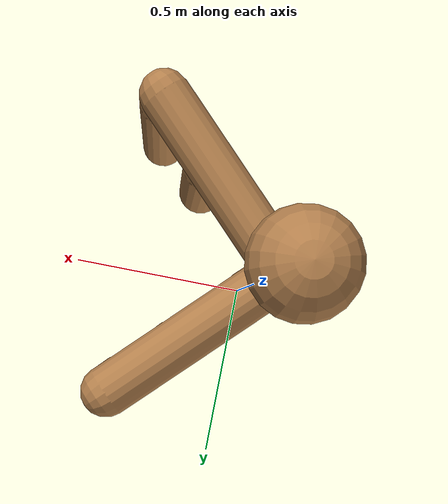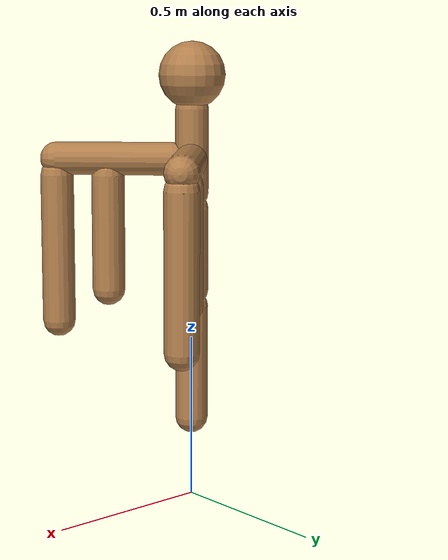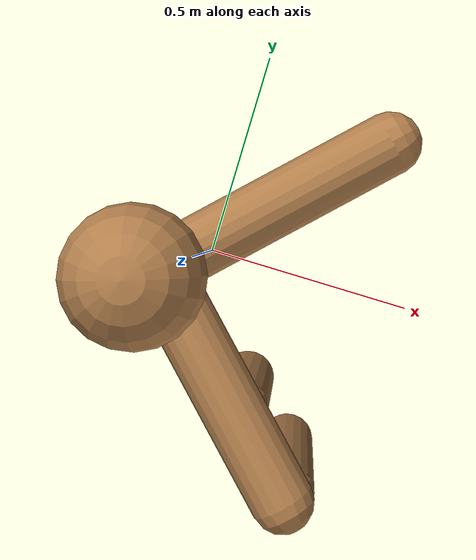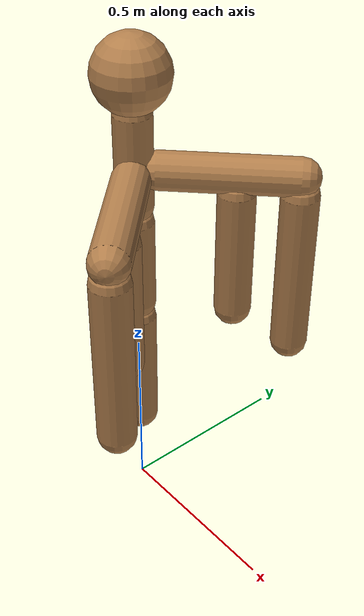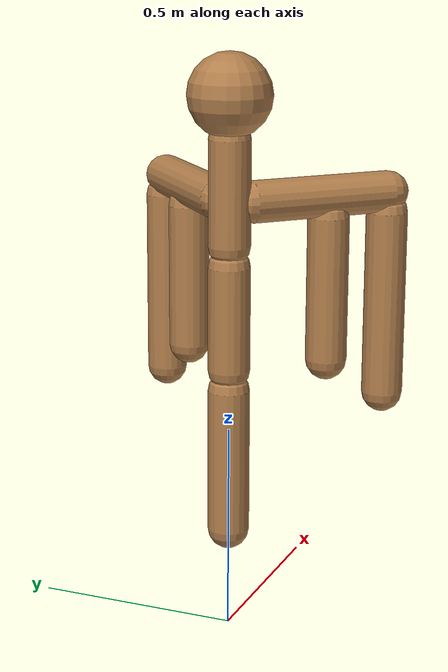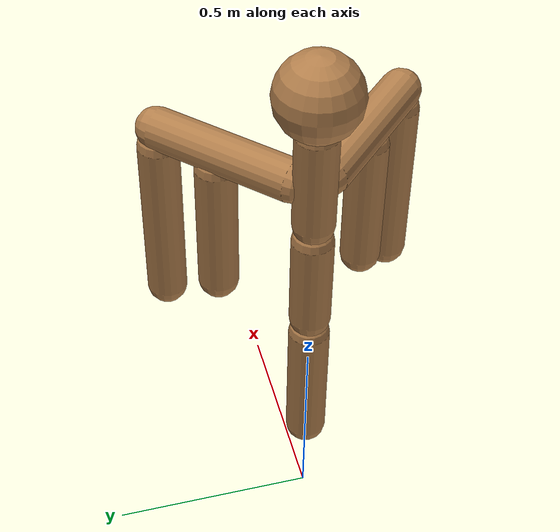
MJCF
<?xml version='1.0' encoding='UTF-8'?>
<!-- Universal Animal Template: unimal -->
<mujoco model="unimal">
  <compiler angle="degree"/>
  <size njmax="2000" nconmax="500"/>
  <option timestep=".005">
    <flag filterparent="disable"/>
  </option>
  <!-- Common defaults to make search space tractable -->
  <default>
    <!-- Define motor defaults -->
    <motor ctrlrange="-1 1" ctrllimited="true"/>
    <!-- Define joint defaults -->
    <default class="normal_joint">
      <joint type="hinge" damping="1" stiffness="1" armature="1" limited="true" range="-120 120" solimplimit="0 0.99 0.01"/>
    </default>
    <default class="walker_joint">
      <joint type="hinge" damping="0.2" stiffness="1" armature=".01" limited="true" range="-120 120" solimplimit="0 0.99 0.01"/>
    </default>
    <default class="stiff_joint">
      <joint type="hinge" damping="5" stiffness="10" armature=".01" limited="true" solimplimit="0 0.99 0.01"/>
    </default>
    <default class="free">
      <joint limited="false" damping="0" armature="0" stiffness="0"/>
    </default>
    <default class="growth_site">
      <site size="1e-6 1e-6 1e-6"/>
    </default>
    <default class="torso_growth_site">
      <site size="1e-6 1e-6 1e-6"/>
    </default>
    <default class="mirror_growth_site">
      <site size="1e-6 1e-6 1e-6"/>
    </default>
    <default class="btm_pos_site">
      <site size="1e-6 1e-6 1e-6"/>
    </default>
    <default class="box_face_site">
      <site size="1e-6 1e-6 1e-6"/>
    </default>
    <default class="imu_vel">
      <site type="box" size="0.05" rgba="1 0 0 0"/>
    </default>
    <default class="touch_site">
      <site group="3" rgba="0 0 1 .3"/>
    </default>
    <default class="food_site">
      <site material="food" size="0.15"/>
    </default>
    <!-- Define geom defaults -->
    <geom type="capsule" condim="3" friction="0.7 0.1 0.1" material="self"/>
  </default>
  <worldbody>
    <light diffuse="1 1 1" directional="true" exponent="1" pos="0 0 8" specular="0.1 0.1 0.1" dir="0 0 -1"/>
    <!-- Programatically generated xml goes here -->
    <body name="torso/0" pos="0 0 1.3">
      <joint name="root" type="free" class="free"/>
      <site name="root" class="imu_vel"/>
      <geom name="torso/0" type="sphere" size="0.1" condim="3" density="800"/>
      <camera name="side" pos="0 -7 2" xyaxes="1 0 0 0 1 2" mode="trackcom"/>
      <site name="torso/0" class="growth_site" pos="0 0 0"/>
      <site name="torso/btm_pos/0" class="btm_pos_site" pos="0 0 -0.1"/>
      <site name="torso/touch/0" class="touch_site" size="0.11"/>
      <site name="torso/vertical/0" class="torso_growth_site" pos="0 0 -0.1"/>
      <body name="limb/0" pos="0.0 0.0 -0.1">
        <joint name="limbx/0" type="hinge" class="normal_joint" range="-60 0" pos="0.0 0.0 0.05" axis="1.0 0.0 0.0"/>
        <joint name="limby/0" type="hinge" class="normal_joint" range="-60 30" pos="0.0 0.0 0.05" axis="0.0 1.0 0.0"/>
        <geom name="limb/0" type="capsule" fromto="0.0 0.0 0.0 0.0 0.0 -0.25" size="0.05" density="500"/>
        <site name="limb/mid/0" class="growth_site" pos="0.0 0.0 -0.15"/>
        <site name="limb/btm/0" class="growth_site" pos="0.0 0.0 -0.25"/>
        <site name="limb/btm_pos/0" class="btm_pos_site" pos="0.0 0.0 -0.25"/>
        <site name="limb/touch/0" class="touch_site" size="0.060000000000000005" fromto="0.0 0.0 0.0 0.0 0.0 -0.25" type="capsule"/>
        <body name="limb/21" pos="0.0 0.0 -0.3">
          <joint name="limbx/21" type="hinge" class="normal_joint" range="-90 0" pos="0.0 0.0 0.05" axis="1.0 0.0 0.0"/>
          <joint name="limby/21" type="hinge" class="normal_joint" range="-90 0" pos="0.0 0.0 0.05" axis="0.0 1.0 0.0"/>
          <geom name="limb/21" type="capsule" fromto="0.0 0.0 0.0 0.0 0.0 -0.25" size="0.05" density="500"/>
          <site name="limb/mid/21" class="growth_site" pos="0.0 0.0 -0.15"/>
          <site name="limb/btm/21" class="growth_site" pos="0.0 0.0 -0.25"/>
          <site name="limb/btm_pos/21" class="btm_pos_site" pos="0.0 0.0 -0.3"/>
          <site name="limb/touch/21" class="touch_site" size="0.060000000000000005" fromto="0.0 0.0 0.0 0.0 0.0 -0.25" type="capsule"/>
          <body name="limb/22" pos="0.0 0.0 -0.3">
            <joint name="limby/22" type="hinge" class="normal_joint" range="-60 30" pos="0.0 0.0 0.05" axis="0.0 1.0 0.0"/>
            <geom name="limb/22" type="capsule" fromto="0.0 0.0 0.0 0.0 0.0 -0.35" size="0.05" density="500"/>
            <site name="limb/mid/22" class="growth_site" pos="0.0 0.0 -0.2"/>
            <site name="limb/btm/22" class="growth_site" pos="0.0 0.0 -0.35"/>
            <site name="limb/btm_pos/22" class="btm_pos_site" pos="0.0 0.0 -0.4"/>
            <site name="limb/touch/22" class="touch_site" size="0.060000000000000005" fromto="0.0 0.0 0.0 0.0 0.0 -0.35" type="capsule"/>
          </body>
        </body>
        <body name="limb/23" pos="0.04 0.04 -0.15">
          <joint name="limby/23" type="hinge" class="normal_joint" range="0 30" pos="-0.04 -0.04 0.0" axis="-0.5 0.5 0.7071"/>
          <geom name="limb/23" type="capsule" fromto="0.0 0.0 0.0 0.25 0.25 0.0" size="0.05" density="500"/>
          <site name="limb/mid/23" class="mirror_growth_site" pos="0.14 0.14 0.0"/>
          <site name="limb/btm/23" class="mirror_growth_site" pos="0.25 0.25 0.0"/>
          <site name="limb/btm_pos/23" class="btm_pos_site" pos="0.28 0.28 0.0"/>
          <site name="limb/touch/23" class="touch_site" size="0.060000000000000005" fromto="0.0 0.0 0.0 0.25 0.25 0.0" type="capsule"/>
          <body name="limb/25" pos="0.25 0.25 -0.05">
            <joint name="limbx/25" type="hinge" class="normal_joint" range="-45 45" pos="0.0 0.0 0.05" axis="1.0 0.0 0.0"/>
            <joint name="limby/25" type="hinge" class="normal_joint" range="0 45" pos="0.0 0.0 0.05" axis="0.0 1.0 0.0"/>
            <geom name="limb/25" type="capsule" fromto="0.0 0.0 0.0 0.0 0.0 -0.45" size="0.05" density="500"/>
            <site name="limb/mid/25" class="mirror_growth_site" pos="0.0 0.0 -0.25"/>
            <site name="limb/btm/25" class="mirror_growth_site" pos="0.0 0.0 -0.45"/>
            <site name="limb/btm_pos/25" class="btm_pos_site" pos="0.0 0.0 -0.5"/>
            <site name="limb/touch/25" class="touch_site" size="0.060000000000000005" fromto="0.0 0.0 0.0 0.0 0.0 -0.45" type="capsule"/>
          </body>
          <body name="limb/27" pos="0.14 0.14 -0.05">
            <joint name="limbx/27" type="hinge" class="normal_joint" range="-30 60" pos="0.0 0.0 0.05" axis="1.0 0.0 0.0"/>
            <joint name="limby/27" type="hinge" class="normal_joint" range="0 45" pos="0.0 0.0 0.05" axis="0.0 1.0 0.0"/>
            <geom name="limb/27" type="capsule" fromto="0.0 0.0 0.0 0.0 0.0 -0.35" size="0.05" density="500"/>
            <site name="limb/mid/27" class="mirror_growth_site" pos="0.0 0.0 -0.2"/>
            <site name="limb/btm/27" class="mirror_growth_site" pos="0.0 0.0 -0.35"/>
            <site name="limb/btm_pos/27" class="btm_pos_site" pos="0.0 0.0 -0.4"/>
            <site name="limb/touch/27" class="touch_site" size="0.060000000000000005" fromto="0.0 0.0 0.0 0.0 0.0 -0.35" type="capsule"/>
          </body>
        </body>
        <body name="limb/24" pos="0.04 -0.04 -0.15">
          <joint name="limby/24" type="hinge" class="normal_joint" range="0 30" pos="-0.04 0.04 0.0" axis="0.5 0.5 -0.7071"/>
          <geom name="limb/24" type="capsule" fromto="0.0 0.0 0.0 0.25 -0.25 0.0" size="0.05" density="500"/>
          <site name="limb/mid/24" class="mirror_growth_site" pos="0.14 -0.14 0.0"/>
          <site name="limb/btm/24" class="mirror_growth_site" pos="0.25 -0.25 0.0"/>
          <site name="limb/btm_pos/24" class="btm_pos_site" pos="0.28 -0.28 0.0"/>
          <site name="limb/touch/24" class="touch_site" size="0.060000000000000005" fromto="0.0 0.0 0.0 0.25 -0.25 0.0" type="capsule"/>
          <body name="limb/26" pos="0.25 -0.25 -0.05">
            <joint name="limbx/26" type="hinge" class="normal_joint" range="-45 45" pos="0.0 0.0 0.05" axis="1.0 0.0 0.0"/>
            <joint name="limby/26" type="hinge" class="normal_joint" range="0 45" pos="0.0 0.0 0.05" axis="0.0 1.0 0.0"/>
            <geom name="limb/26" type="capsule" fromto="0.0 0.0 0.0 0.0 0.0 -0.45" size="0.05" density="500"/>
            <site name="limb/mid/26" class="mirror_growth_site" pos="0.0 0.0 -0.25"/>
            <site name="limb/btm/26" class="mirror_growth_site" pos="0.0 0.0 -0.45"/>
            <site name="limb/btm_pos/26" class="btm_pos_site" pos="0.0 0.0 -0.5"/>
            <site name="limb/touch/26" class="touch_site" size="0.060000000000000005" fromto="0.0 0.0 0.0 0.0 0.0 -0.45" type="capsule"/>
          </body>
          <body name="limb/28" pos="0.14 -0.14 -0.05">
            <joint name="limbx/28" type="hinge" class="normal_joint" range="-30 60" pos="0.0 0.0 0.05" axis="1.0 0.0 0.0"/>
            <joint name="limby/28" type="hinge" class="normal_joint" range="0 45" pos="0.0 0.0 0.05" axis="0.0 1.0 0.0"/>
            <geom name="limb/28" type="capsule" fromto="0.0 0.0 0.0 0.0 0.0 -0.35" size="0.05" density="500"/>
            <site name="limb/mid/28" class="mirror_growth_site" pos="0.0 0.0 -0.2"/>
            <site name="limb/btm/28" class="mirror_growth_site" pos="0.0 0.0 -0.35"/>
            <site name="limb/btm_pos/28" class="btm_pos_site" pos="0.0 0.0 -0.4"/>
            <site name="limb/touch/28" class="touch_site" size="0.060000000000000005" fromto="0.0 0.0 0.0 0.0 0.0 -0.35" type="capsule"/>
          </body>
        </body>
      </body>
    </body>
  </worldbody>
  <actuator>
    <motor joint="limbx/0" gear="300" name="limbx/0"/>
    <motor joint="limby/0" gear="250" name="limby/0"/>
    <motor joint="limbx/21" gear="300" name="limbx/21"/>
    <motor joint="limby/21" gear="200" name="limby/21"/>
    <motor joint="limby/22" gear="150" name="limby/22"/>
    <motor joint="limby/23" gear="150" name="limby/23"/>
    <motor joint="limbx/25" gear="150" name="limbx/25"/>
    <motor joint="limby/25" gear="250" name="limby/25"/>
    <motor joint="limbx/27" gear="200" name="limbx/27"/>
    <motor joint="limby/27" gear="150" name="limby/27"/>
    <motor joint="limby/24" gear="150" name="limby/24"/>
    <motor joint="limbx/26" gear="150" name="limbx/26"/>
    <motor joint="limby/26" gear="250" name="limby/26"/>
    <motor joint="limbx/28" gear="200" name="limbx/28"/>
    <motor joint="limby/28" gear="150" name="limby/28"/>
  </actuator>
  <sensor>
    <accelerometer name="torso_accel" site="root"/>
    <gyro name="torso_gyro" site="root"/>
    <velocimeter name="torso_vel" site="root"/>
    <subtreeangmom name="unimal_am" body="torso/0"/>
    <touch name="torso/0" site="torso/touch/0"/>
    <touch name="limb/0" site="limb/touch/0"/>
    <touch name="limb/21" site="limb/touch/21"/>
    <touch name="limb/22" site="limb/touch/22"/>
    <touch name="limb/23" site="limb/touch/23"/>
    <touch name="limb/25" site="limb/touch/25"/>
    <touch name="limb/27" site="limb/touch/27"/>
    <touch name="limb/24" site="limb/touch/24"/>
    <touch name="limb/26" site="limb/touch/26"/>
    <touch name="limb/28" site="limb/touch/28"/>
  </sensor>
  <!-- Add hfield assets -->
  <asset/>
  <!-- List of contacts to exclude -->
  <contact>
    <exclude name="limb/23:limb/24" body1="limb/23" body2="limb/24"/>
  </contact>
  <!-- Define material, texture etc -->
  <asset>
    <material name="grid" texture="grid" texrepeat="1 1" texuniform="true" reflectance="0.1"/>
    <material name="hfield" texture="hfield" texrepeat="1 1" texuniform="true" reflectance="0.1"/>
    <material name="wall" texture="wall" texrepeat="1 1" texuniform="true" reflectance=".5"/>
    <material name="platform" texture="platform" texrepeat="1 1" texuniform="true" reflectance=".5"/>
    <material name="boundary" texture="boundary" texrepeat="1 1" texuniform="true" reflectance=".5"/>
    <material name="jump" texture="jump" texrepeat="1 1" texuniform="true" reflectance=".5"/>
    <material name="goal" rgba="1 0 0 1"/>
    <material name="food" rgba="0 0 1 1" emission="1"/>
    <material name="init_position" rgba="0 1 0 0.7"/>
    <material name="self" rgba=".7 .5 .3 1"/>
    <material name="self_invisible" rgba=".7 .5 .3 0"/>
    <material name="self_default" rgba=".7 .5 .3 1"/>
    <material name="self_highlight" rgba="0 .5 .3 1"/>
    <material name="effector" rgba=".7 .4 .2 1"/>
    <material name="effector_default" rgba=".7 .4 .2 1"/>
    <material name="effector_highlight" rgba="0 .5 .3 1"/>
    <material name="decoration" rgba=".3 .5 .7 1"/>
    <material name="eye" rgba="0 .2 1 1"/>
    <material name="target" rgba=".6 .3 .3 1"/>
    <material name="target_default" rgba=".6 .3 .3 1"/>
    <material name="target_highlight" rgba=".6 .3 .3 .4"/>
    <material name="site" rgba=".5 .5 .5 .3"/>
    <material name="ball" texture="ball"/>
  </asset>
  <asset>
    <texture name="grid" type="2d" builtin="checker" rgb1="0.4 0.4 0.4" rgb2="0.4 0.4 0.4" width="300" height="300" mark="edge" markrgb="0.2 0.2 0.2"/>
    <texture name="hfield" type="2d" builtin="checker" rgb1="0.4 0.4 0.4" rgb2="0.4 0.4 0.4" width="300" height="300" mark="edge" markrgb="0.2 0.2 0.2"/>
    <texture name="wall" type="2d" builtin="flat" rgb1="0.9 0.7 0" rgb2="0.9 0.7 0" width="300" height="300"/>
    <texture name="platform" type="2d" builtin="flat" rgb1="0.3 0 0.8" rgb2="0.3 0 0.8" width="300" height="300"/>
    <texture name="boundary" type="2d" builtin="flat" rgb1="0.3 0.3 0.3" rgb2="0.3 0.3 0.3" width="300" height="300"/>
    <texture name="jump" type="2d" builtin="flat" rgb1="0.3 0.3 0.3" rgb2="0.3 0.3 0.3" width="300" height="300"/>
    <texture name="skybox" type="skybox" builtin="gradient" rgb1="1 1 1" rgb2="0.6 0.6 0.6" width="800" height="800"/>
    <texture name="ball" builtin="checker" mark="cross" width="151" height="151" rgb1="0.1 0.1 0.1" rgb2="0.9 0.9 0.9" markrgb="1 1 1"/>
  </asset>
  <visual>
    <headlight ambient="0.6 0.6 0.6" diffuse="0.3 0.3 0.3" specular="0 0 0"/>
    <map znear=".01" shadowclip="0.5"/>
    <quality shadowsize="16384"/>
  </visual>
</mujoco>
